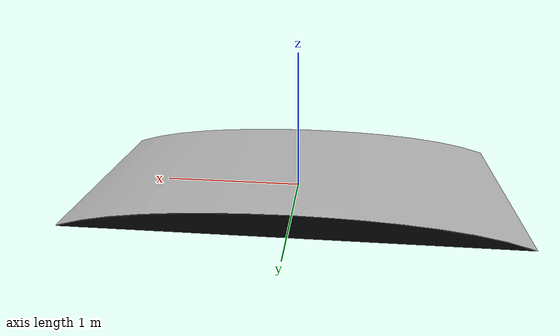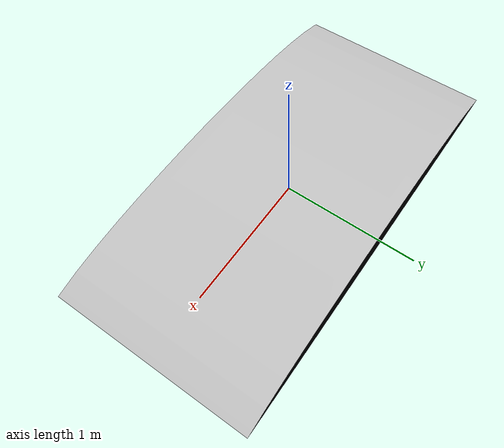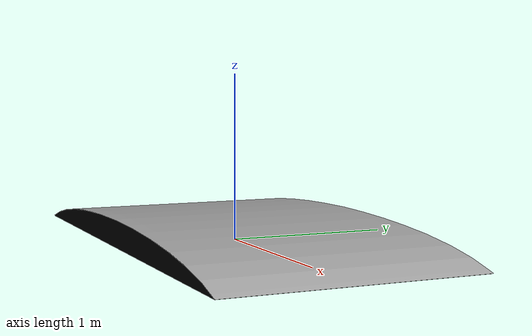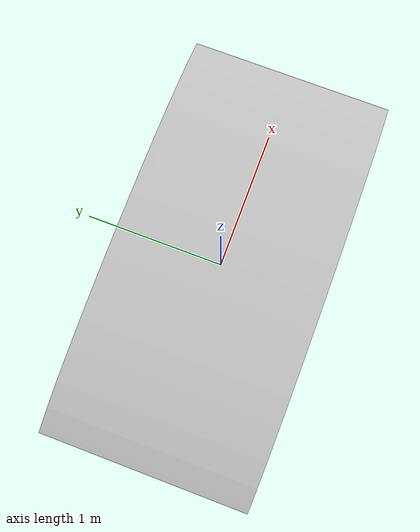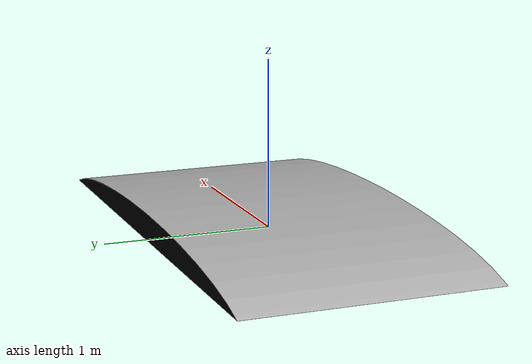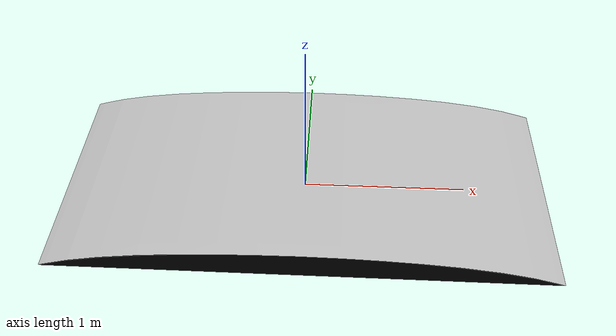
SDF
<?xml version="1.0"?>
<sdf version="1.5">
    <model name="Sharp_turn_left_long_2_legs">
      <pose>0 0 0  0 0 0</pose>
      <static>true</static>
      <link name="body">
        <inertial>
          <mass>1.0</mass>
          <inertia> <!-- inertias are tricky to compute -->
            <!-- http://gazebosim.org/tutorials?tut=inertia&cat=build_robot -->
            <ixx>0.083</ixx>       <!-- for a box: ixx = 0.083 * mass * (y*y + z*z) -->
            <ixy>0.0</ixy>         <!-- for a box: ixy = 0 -->
            <ixz>0.0</ixz>         <!-- for a box: ixz = 0 -->
            <iyy>0.083</iyy>       <!-- for a box: iyy = 0.083 * mass * (x*x + z*z) -->
            <iyz>0.0</iyz>         <!-- for a box: iyz = 0 -->
            <izz>0.083</izz>       <!-- for a box: izz = 0.083 * mass * (x*x + y*y) -->
          </inertia>
        </inertial>
        <collision name="collision">
          <pose>0 0 0 0 0 0</pose>
          <geometry>
            <mesh>
	            <uri>model://meshes/Ramp.dae</uri>
              <scale>1 1 1</scale>
	          </mesh>
          </geometry>
        </collision>
        <visual name="visual">
          <geometry>
            <mesh>
	            <uri>model://meshes/Sharp_turn_left_long_2_legs.dae</uri>
	            <scale>1 1 1</scale>
	          </mesh>
          </geometry>
        </visual>
      </link>
    </model>
</sdf>
